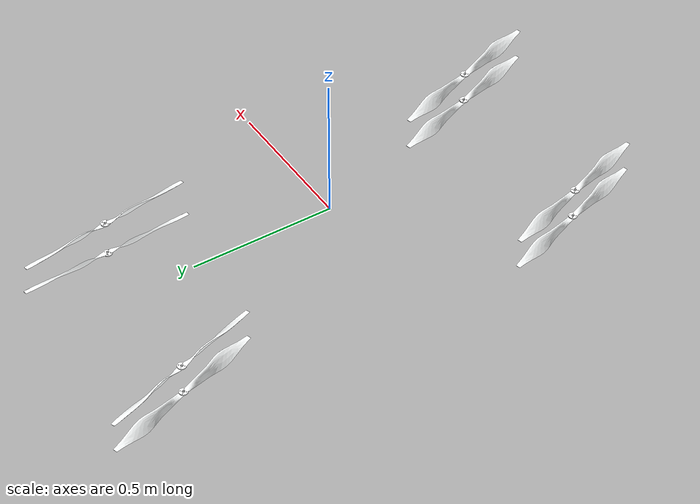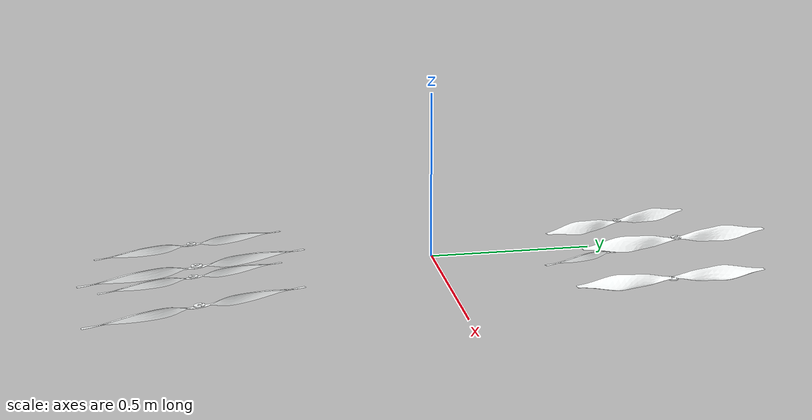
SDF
<?xml version="1.0" encoding="UTF-8"?>
<sdf version='1.9'>
  <model name='w_beta_motors'>
    <link name="motors_attach_link">
    </link>
    <joint name='motor1_joint' type='revolute'>
      <pose relative_to='motors_attach_link'>0.232905435027709 -0.680975950313778 0.086799987792292504 0 0 0</pose>
      <parent>motors_attach_link</parent>
      <child>motor1_link</child>
      <axis>
        <xyz>0 0 -1</xyz>
        <limit>
          <lower>-inf</lower>
          <upper>inf</upper>
        </limit>
        <dynamics>
          <spring_reference>0</spring_reference>
          <spring_stiffness>0</spring_stiffness>
        </dynamics>
      </axis>
    </joint>
    <link name='motor1_link'>
      <pose relative_to='motor1_joint'>0 0 0 0 0 0</pose>
      <inertial>
        <pose>0.0013718469714564 0.00045606731450897902 0.0073133449794331997 0 0 0</pose>
        <mass>0.091055401402339503</mass>
        <inertia>
          <ixx>0.0017997098022500199</ixx>
          <ixy>0.00059831592731370399</ixy>
          <ixz>-2.9180888247381602e-06</ixz>
          <iyy>0.00020796254990806899</iyy>
          <iyz>-9.7400626864641191e-07</iyz>
          <izz>0.0019993487307220599</izz>
        </inertia>
      </inertial>
      <collision name='motor1_link_collision'>
        <pose>0 0 0 0 0 0</pose>
        <geometry>
        </geometry>
      </collision>
      <visual name='motor1_link_visual'>
        <pose>0 0 0 0 0 0</pose>
        <geometry>
          <mesh>
            <scale>1 1 1</scale>
            <uri>model://w_beta_motors/meshes/motor1_link.STL</uri>
          </mesh>
        </geometry>
        <material>
          <diffuse>0.990196109 1 1 1</diffuse>
          <ambient>0.990196109 1 1 1</ambient>
        </material>
      </visual>
    </link>
    <joint name='motor2_joint' type='revolute'>
      <pose relative_to='motors_attach_link'>0.23290543502750999 0.68099894846030495 0.086799987792292504 0 0 0</pose>
      <parent>motors_attach_link</parent>
      <child>motor2_link</child>
      <axis>
        <xyz>0 0 -1</xyz>
        <limit>
          <lower>-inf</lower>
          <upper>inf</upper>
        </limit>
        <dynamics>
          <spring_reference>0</spring_reference>
          <spring_stiffness>0</spring_stiffness>
        </dynamics>
      </axis>
    </joint>
    <link name='motor2_link'>
      <pose relative_to='motor2_joint'>0 0 0 0 0 0</pose>
      <inertial>
        <pose>-0.0014305032114755899 -0.00021090659012745801 0.0073135866330750199 0 0 0</pose>
        <mass>0.091056722623615596</mass>
        <inertia>
          <ixx>0.00195635507139776</ixx>
          <ixy>0.00029002882339814102</ixy>
          <ixz>3.0428743722712e-06</ixz>
          <iyy>5.1323748601635897e-05</iyy>
          <iyz>4.5325872488288102e-07</iyz>
          <izz>0.0019993550610476201</izz>
        </inertia>
      </inertial>
      <collision name='motor2_link_collision'>
        <pose>0 0 0 0 0 0</pose>
        <geometry>
        </geometry>
      </collision>
      <visual name='motor2_link_visual'>
        <pose>0 0 0 0 0 0</pose>
        <geometry>
          <mesh>
            <scale>1 1 1</scale>
            <uri>model://w_beta_motors/meshes/motor2_link.STL</uri>
          </mesh>
        </geometry>
        <material>
          <diffuse>0.990196109 1 1 1</diffuse>
          <ambient>0.990196109 1 1 1</ambient>
        </material>
      </visual>
    </link>
    <joint name='motor3_joint' type='revolute'>
      <pose relative_to='motors_attach_link'>-0.32790634716345701 0.73263569922032301 -0.033550012207737803 0 0 0</pose>
      <parent>motors_attach_link</parent>
      <child>motor3_link</child>
      <axis>
        <xyz>0 0 -1</xyz>
        <limit>
          <lower>-inf</lower>
          <upper>inf</upper>
        </limit>
        <dynamics>
          <spring_reference>0</spring_reference>
          <spring_stiffness>0</spring_stiffness>
        </dynamics>
      </axis>
    </joint>
    <link name='motor3_link'>
      <pose relative_to='motor3_joint'>0 0 0 0 0 0</pose>
      <inertial>
        <pose>-0.0013718027474161601 -0.00045616980930340801 0.0073133274877710099 0 0 0</pose>
        <mass>0.091055296133623898</mass>
        <inertia>
          <ixx>0.0017997089058008301</ixx>
          <ixy>0.000598315540688855</ixy>
          <ixz>2.9180241614739701e-06</ixz>
          <iyy>0.00020796235892841001</iyy>
          <iyz>9.7416410668095493e-07</iyz>
          <izz>0.00199934769343766</izz>
        </inertia>
      </inertial>
      <collision name='motor3_link_collision'>
        <pose>0 0 0 0 0 0</pose>
        <geometry>
        </geometry>
      </collision>
      <visual name='motor3_link_visual'>
        <pose>0 0 0 0 0 0</pose>
        <geometry>
          <mesh>
            <scale>1 1 1</scale>
            <uri>model://w_beta_motors/meshes/motor3_link.STL</uri>
          </mesh>
        </geometry>
        <material>
          <diffuse>0.990196109 1 1 1</diffuse>
          <ambient>0.990196109 1 1 1</ambient>
        </material>
      </visual>
    </link>
    <joint name='motor4_joint' type='revolute'>
      <pose relative_to='motors_attach_link'>-0.32790634716328698 -0.73263569922915805 -0.033550012207681001 0 0 0</pose>
      <parent>motors_attach_link</parent>
      <child>motor4_link</child>
      <axis>
        <xyz>0 0 -1</xyz>
        <limit>
          <lower>-inf</lower>
          <upper>inf</upper>
        </limit>
        <dynamics>
          <spring_reference>0</spring_reference>
          <spring_stiffness>0</spring_stiffness>
        </dynamics>
      </axis>
    </joint>
    <link name='motor4_link'>
      <pose relative_to='motor4_joint'>0 0 0 0 0 0</pose>
      <inertial>
        <pose>0.0014305394353528701 0.00021075342762255601 0.0073136083419090498 0 0 0</pose>
        <mass>0.091056825312321704</mass>
        <inertia>
          <ixx>0.00195635690033652</ixx>
          <ixy>0.00029002920953167697</ixy>
          <ixz>-3.0429229474669701e-06</ixz>
          <iyy>5.1323862673045503e-05</iyy>
          <iyz>-4.5304453840861302e-07</iyz>
          <izz>0.00199935693898753</izz>
        </inertia>
      </inertial>
      <collision name='motor4_link_collision'>
        <pose>0 0 0 0 0 0</pose>
        <geometry>
        </geometry>
      </collision>
      <visual name='motor4_link_visual'>
        <pose>0 0 0 0 0 0</pose>
        <geometry>
          <mesh>
            <scale>1 1 1</scale>
            <uri>model://w_beta_motors/meshes/motor4_link.STL</uri>
          </mesh>
        </geometry>
        <material>
          <diffuse>0.990196109 1 1 1</diffuse>
          <ambient>0.990196109 1 1 1</ambient>
        </material>
      </visual>
    </link>
    <joint name='motor5_joint' type='revolute'>
      <pose relative_to='motors_attach_link'>0.23290543502762401 0.68099894846028297 -0.025799987792194799 0 0 0</pose>
      <parent>motors_attach_link</parent>
      <child>motor5_link</child>
      <axis>
        <xyz>0 0 -1</xyz>
        <limit>
          <lower>-inf</lower>
          <upper>inf</upper>
        </limit>
        <dynamics>
          <spring_reference>0</spring_reference>
          <spring_stiffness>0</spring_stiffness>
        </dynamics>
      </axis>
    </joint>
    <link name='motor5_link'>
      <pose relative_to='motor5_joint'>0 0 0 0 0 0</pose>
      <inertial>
        <pose>0.00144206884039741 0.00010457013763298699 -0.00731347329195931 0 0 0</pose>
        <mass>0.091055764859041002</mass>
        <inertia>
          <ixx>0.0019895629809236598</ixx>
          <ixy>0.00014047468210117201</ixy>
          <ixz>3.0686609132952299e-06</ixz>
          <iyy>1.81062769655122e-05</iyy>
          <iyz>2.1778521508269101e-07</iyz>
          <izz>0.0019993456337022001</izz>
        </inertia>
      </inertial>
      <collision name='motor5_link_collision'>
        <pose>0 0 0 0 0 0</pose>
        <geometry>
        </geometry>
      </collision>
      <visual name='motor5_link_visual'>
        <pose>0 0 0 0 0 0</pose>
        <geometry>
          <mesh>
            <scale>1 1 1</scale>
            <uri>model://w_beta_motors/meshes/motor5_link.STL</uri>
          </mesh>
        </geometry>
        <material>
          <diffuse>0.990196109 1 1 1</diffuse>
          <ambient>0.990196109 1 1 1</ambient>
        </material>
      </visual>
    </link>
    <joint name='motor6_joint' type='revolute'>
      <pose relative_to='motors_attach_link'>0.23290543502750999 -0.68097595031382396 -0.0257999877923085 0 0 0</pose>
      <parent>motors_attach_link</parent>
      <child>motor6_link</child>
      <axis>
        <xyz>0 0 -1</xyz>
        <limit>
          <lower>-inf</lower>
          <upper>inf</upper>
        </limit>
        <dynamics>
          <spring_reference>0</spring_reference>
          <spring_stiffness>0</spring_stiffness>
        </dynamics>
      </axis>
    </joint>
    <link name='motor6_link'>
      <pose relative_to='motor6_joint'>0 0 0 0 0 0</pose>
      <inertial>
        <pose>-0.0014019666907453001 -0.00035278058782373101 -0.00731336261518518 0 0 0</pose>
        <mass>0.091055458263771205</mass>
        <inertia>
          <ixx>0.0018820721822407</ixx>
          <ixy>0.00046914297123356702</ixy>
          <ixz>-2.9843838418467101e-06</ixz>
          <iyy>0.00012559846268942699</iyy>
          <iyz>-7.4656086728988697e-07</iyz>
          <izz>0.0019993470429182599</izz>
        </inertia>
      </inertial>
      <collision name='motor6_link_collision'>
        <pose>0 0 0 0 0 0</pose>
        <geometry>
        </geometry>
      </collision>
      <visual name='motor6_link_visual'>
        <pose>0 0 0 0 0 0</pose>
        <geometry>
          <mesh>
            <scale>1 1 1</scale>
            <uri>model://w_beta_motors/meshes/motor6_link.STL</uri>
          </mesh>
        </geometry>
        <material>
          <diffuse>0.990196109 1 1 1</diffuse>
          <ambient>0.990196109 1 1 1</ambient>
        </material>
      </visual>
    </link>
    <joint name='motor7_joint' type='revolute'>
      <pose relative_to='motors_attach_link'>-0.32790634716331502 -0.73263569922916505 -0.146149987792282 0 0 0</pose>
      <parent>motors_attach_link</parent>
      <child>motor7_link</child>
      <axis>
        <xyz>0 0 -1</xyz>
        <limit>
          <lower>-inf</lower>
          <upper>inf</upper>
        </limit>
        <dynamics>
          <spring_reference>0</spring_reference>
          <spring_stiffness>0</spring_stiffness>
        </dynamics>
      </axis>
    </joint>
    <link name='motor7_link'>
      <pose relative_to='motor7_joint'>0 0 0 0 0 0</pose>
      <inertial>
        <pose>-0.00166101285024139 -0.000120465167883221 -0.0072548228527559598 0 0 0</pose>
        <mass>0.079054414580314397</mass>
        <inertia>
          <ixx>0.0019887982013668199</ixx>
          <ixy>0.000140474760503411</ixy>
          <ixz>-3.0686766060765701e-06</ixz>
          <iyy>1.7340530468496e-05</iyy>
          <iyz>-2.17810643749924e-07</iyz>
          <izz>0.00199783301883896</izz>
        </inertia>
      </inertial>
      <collision name='motor7_link_collision'>
        <pose>0 0 0 0 0 0</pose>
        <geometry>
        </geometry>
      </collision>
      <visual name='motor7_link_visual'>
        <pose>0 0 0 0 0 0</pose>
        <geometry>
          <mesh>
            <scale>1 1 1</scale>
            <uri>model://w_beta_motors/meshes/motor7_link.STL</uri>
          </mesh>
        </geometry>
        <material>
          <diffuse>0.990196109 1 1 1</diffuse>
          <ambient>0.990196109 1 1 1</ambient>
        </material>
      </visual>
    </link>
    <joint name='motor8_joint' type='revolute'>
      <pose relative_to='motors_attach_link'>-0.32790634716323003 0.73263569922035099 -0.14614998779233901 0 0 0</pose>
      <parent>motors_attach_link</parent>
      <child>motor8_link</child>
      <axis>
        <xyz>0 0 -1</xyz>
        <limit>
          <lower>-inf</lower>
          <upper>inf</upper>
        </limit>
        <dynamics>
          <spring_reference>0</spring_reference>
          <spring_stiffness>0</spring_stiffness>
        </dynamics>
      </axis>
    </joint>
    <link name='motor8_link'>
      <pose relative_to='motor8_joint'>0 0 0 0 0 0</pose>
      <inertial>
        <pose>0.00140196642899793 0.00035278039145292299 -0.0073133608665574799 0 0 0</pose>
        <mass>0.091055432799156497</mass>
        <inertia>
          <ixx>0.0018820720184547399</ixx>
          <ixy>0.00046914295333832698</ixy>
          <ixz>2.9843818041830602e-06</ixz>
          <iyy>0.000125598459607257</iyy>
          <iyz>7.4656547086783298e-07</iyz>
          <izz>0.0019993468762170802</izz>
        </inertia>
      </inertial>
      <collision name='motor8_link_collision'>
        <pose>0 0 0 0 0 0</pose>
        <geometry>
        </geometry>
      </collision>
      <visual name='motor8_link_visual'>
        <pose>0 0 0 0 0 0</pose>
        <geometry>
          <mesh>
            <scale>1 1 1</scale>
            <uri>model://w_beta_motors/meshes/motor8_link.STL</uri>
          </mesh>
        </geometry>
        <material>
          <diffuse>0.990196109 1 1 1</diffuse>
          <ambient>0.990196109 1 1 1</ambient>
        </material>
      </visual>
    </link>
    <plugin filename="gz-sim-multicopter-motor-model-system" name="gz::sim::systems::MulticopterMotorModel">
      <jointName>motor1_joint</jointName>
      <linkName>motor1_link</linkName>
      <turningDirection>ccw</turningDirection>
      <timeConstantUp>0.0125</timeConstantUp>
      <timeConstantDown>0.025</timeConstantDown>
      <maxRotVelocity>521</maxRotVelocity>
      <motorConstant>0.0002888</motorConstant>
      <momentConstant>0.07077</momentConstant>
      <commandSubTopic>command/motor_speed</commandSubTopic>
      <motorNumber>0</motorNumber>
      <rotorDragCoefficient>0.000919012</rotorDragCoefficient>
      <rollingMomentCoefficient>1e-06</rollingMomentCoefficient>
      <rotorVelocitySlowdownSim>10</rotorVelocitySlowdownSim>
      <motorType>velocity</motorType>
    </plugin>
    <plugin filename="gz-sim-multicopter-motor-model-system" name="gz::sim::systems::MulticopterMotorModel">
      <jointName>motor2_joint</jointName>
      <linkName>motor2_link</linkName>
      <turningDirection>cw</turningDirection>
      <timeConstantUp>0.0125</timeConstantUp>
      <timeConstantDown>0.025</timeConstantDown>
      <maxRotVelocity>521</maxRotVelocity>
      <motorConstant>0.0002888</motorConstant>
      <momentConstant>0.07077</momentConstant>
      <commandSubTopic>command/motor_speed</commandSubTopic>
      <motorNumber>1</motorNumber>
      <rotorDragCoefficient>0.000919012</rotorDragCoefficient>
      <rollingMomentCoefficient>1e-06</rollingMomentCoefficient>
      <rotorVelocitySlowdownSim>10</rotorVelocitySlowdownSim>
      <motorType>velocity</motorType>
    </plugin>
    <plugin filename="gz-sim-multicopter-motor-model-system" name="gz::sim::systems::MulticopterMotorModel">
      <jointName>motor3_joint</jointName>
      <linkName>motor3_link</linkName>
      <turningDirection>ccw</turningDirection>
      <timeConstantUp>0.0125</timeConstantUp>
      <timeConstantDown>0.025</timeConstantDown>
      <maxRotVelocity>521</maxRotVelocity>
      <motorConstant>0.0002888</motorConstant>
      <momentConstant>0.07077</momentConstant>
      <commandSubTopic>command/motor_speed</commandSubTopic>
      <motorNumber>2</motorNumber>
      <rotorDragCoefficient>0.000919012</rotorDragCoefficient>
      <rollingMomentCoefficient>1e-06</rollingMomentCoefficient>
      <rotorVelocitySlowdownSim>10</rotorVelocitySlowdownSim>
      <motorType>velocity</motorType>
    </plugin>
    <plugin filename="gz-sim-multicopter-motor-model-system" name="gz::sim::systems::MulticopterMotorModel">
      <jointName>motor4_joint</jointName>
      <linkName>motor4_link</linkName>
      <turningDirection>cw</turningDirection>
      <timeConstantUp>0.0125</timeConstantUp>
      <timeConstantDown>0.025</timeConstantDown>
      <maxRotVelocity>521</maxRotVelocity>
      <motorConstant>0.0002888</motorConstant>
      <momentConstant>0.07077</momentConstant>
      <commandSubTopic>command/motor_speed</commandSubTopic>
      <motorNumber>3</motorNumber>
      <rotorDragCoefficient>0.000919012</rotorDragCoefficient>
      <rollingMomentCoefficient>1e-06</rollingMomentCoefficient>
      <rotorVelocitySlowdownSim>10</rotorVelocitySlowdownSim>
      <motorType>velocity</motorType>
    </plugin>
    <plugin filename="gz-sim-multicopter-motor-model-system" name="gz::sim::systems::MulticopterMotorModel">
      <jointName>motor5_joint</jointName>
      <linkName>motor5_link</linkName>
      <turningDirection>ccw</turningDirection>
      <timeConstantUp>0.0125</timeConstantUp>
      <timeConstantDown>0.025</timeConstantDown>
      <maxRotVelocity>521</maxRotVelocity>
      <motorConstant>0.0002888</motorConstant>
      <momentConstant>0.07077</momentConstant>
      <commandSubTopic>command/motor_speed</commandSubTopic>
      <motorNumber>4</motorNumber>
      <rotorDragCoefficient>0.000919012</rotorDragCoefficient>
      <rollingMomentCoefficient>1e-06</rollingMomentCoefficient>
      <rotorVelocitySlowdownSim>10</rotorVelocitySlowdownSim>
      <motorType>velocity</motorType>
    </plugin>
    <plugin filename="gz-sim-multicopter-motor-model-system" name="gz::sim::systems::MulticopterMotorModel">
      <jointName>motor6_joint</jointName>
      <linkName>motor6_link</linkName>
      <turningDirection>cw</turningDirection>
      <timeConstantUp>0.0125</timeConstantUp>
      <timeConstantDown>0.025</timeConstantDown>
      <maxRotVelocity>521</maxRotVelocity>
      <motorConstant>0.0002888</motorConstant>
      <momentConstant>0.07077</momentConstant>
      <commandSubTopic>command/motor_speed</commandSubTopic>
      <motorNumber>5</motorNumber>
      <rotorDragCoefficient>0.000919012</rotorDragCoefficient>
      <rollingMomentCoefficient>1e-06</rollingMomentCoefficient>
      <rotorVelocitySlowdownSim>10</rotorVelocitySlowdownSim>
      <motorType>velocity</motorType>
    </plugin>
    <plugin filename="gz-sim-multicopter-motor-model-system" name="gz::sim::systems::MulticopterMotorModel">
      <jointName>motor7_joint</jointName>
      <linkName>motor7_link</linkName>
      <turningDirection>ccw</turningDirection>
      <timeConstantUp>0.0125</timeConstantUp>
      <timeConstantDown>0.025</timeConstantDown>
      <maxRotVelocity>521</maxRotVelocity>
      <motorConstant>0.0002888</motorConstant>
      <momentConstant>0.07077</momentConstant>
      <commandSubTopic>command/motor_speed</commandSubTopic>
      <motorNumber>6</motorNumber>
      <rotorDragCoefficient>0.000919012</rotorDragCoefficient>
      <rollingMomentCoefficient>1e-06</rollingMomentCoefficient>
      <rotorVelocitySlowdownSim>10</rotorVelocitySlowdownSim>
      <motorType>velocity</motorType>
    </plugin>
    <plugin filename="gz-sim-multicopter-motor-model-system" name="gz::sim::systems::MulticopterMotorModel">
      <jointName>motor8_joint</jointName>
      <linkName>motor8_link</linkName>
      <turningDirection>cw</turningDirection>
      <timeConstantUp>0.0125</timeConstantUp>
      <timeConstantDown>0.025</timeConstantDown>
      <maxRotVelocity>521</maxRotVelocity>
      <motorConstant>0.0002888</motorConstant>
      <momentConstant>0.07077</momentConstant>
      <commandSubTopic>command/motor_speed</commandSubTopic>
      <motorNumber>7</motorNumber>
      <rotorDragCoefficient>0.000919012</rotorDragCoefficient>
      <rollingMomentCoefficient>1e-06</rollingMomentCoefficient>
      <rotorVelocitySlowdownSim>10</rotorVelocitySlowdownSim>
      <motorType>velocity</motorType>
    </plugin>
  </model>
</sdf>
